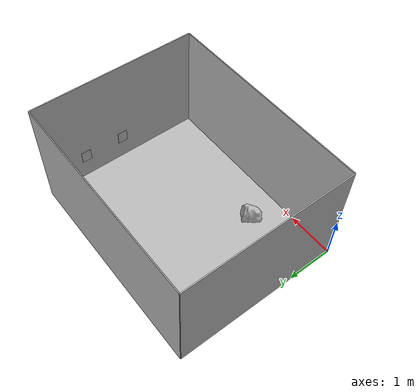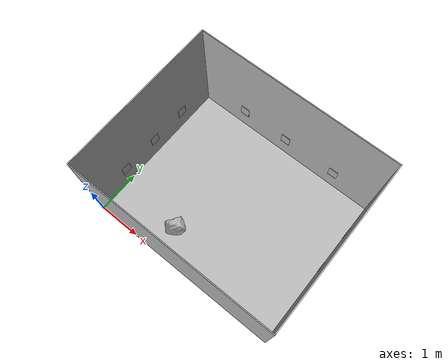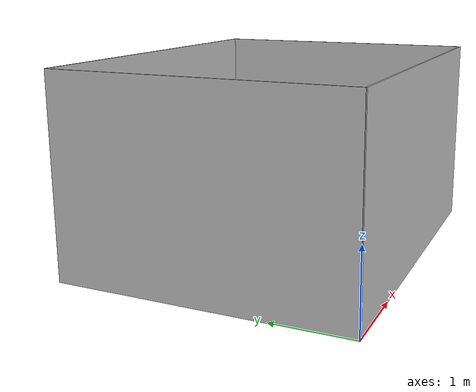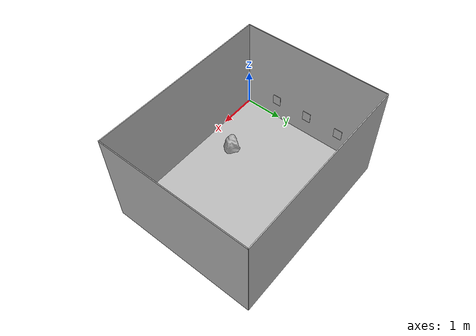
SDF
<sdf version="1.4">
 <world name="MAST demo room">
  <scene><ambient>0.5 0.5 0.5 1</ambient><background>0.5 0.5 0.5 1</background><shadows>false</shadows></scene>
  <physics type="ode">
   <gravity>0 0 -9.81</gravity>
   <ode>
    <solver><type>quick</type><iters>10</iters><sor>1.3</sor></solver>
    <constraints>
     <cfm>0.0</cfm>
     <erp>0.2</erp>
     <contact_max_correcting_vel>10</contact_max_correcting_vel>
     <contact_surface_layer>0.001</contact_surface_layer>
    </constraints>
   </ode>
   <max_step_size>0.001</max_step_size>
  </physics>
  <light name="directional_light_1" type="directional">
   <pose>0 20 20 0.1 0.1 0</pose>
   <diffuse>1 1 1 1</diffuse>
   <specular>1 1 1 1</specular>
   <attenuation><range>300</range></attenuation>
   <direction>0.1 0.1 -1</direction>
   <cast_shadows>false</cast_shadows>
  </light>
  <model name="north_wall">
   <pose>2.29 3.66 0 0 0 0</pose>
   <include><uri>model://MiniMarsWallNorth</uri></include>
  </model>
  <model name="south_wall">
   <pose>2.29 0 0 0 0 0</pose>
   <include><uri>model://MiniMarsWallNorth</uri></include>
  </model>
  <model name="east_wall">
   <pose>4.57 1.83 0 0 0 0</pose>
   <include><uri>model://MiniMarsWallEast</uri></include>
  </model>
  <model name="west_wall">
   <pose>0 1.83 0 0 0 0</pose>
   <include><uri>model://MiniMarsWallEast</uri></include>
  </model>
  <model name="floor"><pose>2.29 1.83 0 0 0 0</pose><include><uri>model://MiniMarsFloor</uri></include></model>
  <model name="at000"><pose>0.02 0.91 0.6 1.57 0 1.57</pose><include><uri>model://at000</uri></include></model>
  <model name="at001"><pose>0.02 1.82 0.6 1.57 0 1.57</pose><include><uri>model://at001</uri></include></model>
  <model name="at002"><pose>0.02 2.73 0.6 1.57 0 1.57</pose><include><uri>model://at002</uri></include></model>
  <model name="at003"><pose>1.14 3.64 0.6 1.57 0 0</pose><include><uri>model://at003</uri></include></model>
  <model name="at004"><pose>2.28 3.64 0.6 1.57 0 0</pose><include><uri>model://at004</uri></include></model>
  <model name="at005"><pose>3.56 3.64 0.6 1.57 0 0</pose><include><uri>model://at005</uri></include></model>
  <model name="at006"><pose>4.55 2.73 0.6 1.57 0 -1.57</pose><include><uri>model://at006</uri></include></model>
  <model name="at007"><pose>4.55 1.82 0.6 1.57 0 -1.57</pose><include><uri>model://at007</uri></include></model>
  <model name="rock_blue"><pose>1.5 0.75 0 0 0 0</pose><include><uri>model://rock_blue</uri></include></model>
 </world>
</sdf>

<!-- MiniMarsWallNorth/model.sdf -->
<sdf version="1.4">
<model name="MiniMarsWallNorth">
  <pose>0 0 1.25 0 0 0</pose>
  <static>true</static>
    <link name="link">
      <collision name="collision">
        <geometry>
          <box>
            <size>4.57 0.02 2.5</size>
          </box>
        </geometry>
      </collision>
      <visual name="visual">
        <geometry>
          <box>
            <size>4.57 0.02 2.5</size>
          </box>
        </geometry>
		       <material>
			<script>
        <uri>model://MiniMarsWallNorth/materials/scripts</uri>
        <uri>model://MiniMarsWallNorth/materials/textures</uri>
        <name>MiniMarsWall/Image</name>
      </script>
        	</material>
      </visual>
    </link>
  </model>
</sdf>

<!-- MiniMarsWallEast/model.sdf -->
<sdf version="1.4">
<model name="MiniMarsWallNorth">
  <pose>0 0 1.25 0 0 0</pose>
  <static>true</static>
    <link name="link">
      <collision name="collision">
        <geometry>
          <box>
            <size>0.02 3.66 2.5</size>
          </box>
        </geometry>
      </collision>
      <visual name="visual">
        <geometry>
          <box>
            <size>0.02 3.66 2.5</size>
          </box>
        </geometry>
		       <material>
			<script>
        <uri>model://MiniMarsWallEast/materials/scripts</uri>
        <uri>model://MiniMarsWallEast/materials/textures</uri>
        <name>MiniMarsWall/Image</name>
      </script>
        	</material>
      </visual>
    </link>
  </model>
</sdf>

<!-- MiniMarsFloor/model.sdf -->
<sdf version="1.4">
<model name="MiniMarsFloor">
  <pose>0 0 0.01 0 0 0</pose>
  <static>true</static>
    <link name="link">
      <collision name="collision">
        <geometry>
          <box>
            <size>4.57 3.66 0.01</size>
          </box>
        </geometry>
      </collision>
      <visual name="visual">
        <geometry>
          <box>
            <size>4.57 3.66 0.01</size>
          </box>
        </geometry>
		       <material>
			<script>
        <uri>model://MiniMarsFloor/materials/scripts</uri>
        <uri>model://MiniMarsFloor/materials/textures</uri>
        <name>MiniMarsFloor/Image</name>
      </script>
        	</material>
      </visual>
    </link>
  </model>
</sdf>

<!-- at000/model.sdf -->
<sdf version="1.4">
<model name="MiniMarsAT000">
  <pose>0 0 0 0 0 0</pose>
  <static>true</static>
    <link name="link">
      <collision name="collision">
        <geometry>
          <box>
            <size>0.22 0.28 0.01</size>
          </box>
        </geometry>
      </collision>
      <visual name="visual">
        <geometry>
          <box>
            <size>0.22 0.28 0.01</size>
          </box>
        </geometry>
		       <material>
			<script>
        <uri>model://at000/materials/scripts</uri>
        <uri>model://at000/materials/textures</uri>
        <name>at000/Image</name>
      </script>
        	</material>
      </visual>
    </link>
  </model>
</sdf>

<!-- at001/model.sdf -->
<sdf version="1.4">
<model name="MiniMarsAT001">
  <pose>0 0 0 0 0 0</pose>
  <static>true</static>
    <link name="link">
      <collision name="collision">
        <geometry>
          <box>
            <size>0.22 0.28 0.01</size>
          </box>
        </geometry>
      </collision>
      <visual name="visual">
        <geometry>
          <box>
            <size>0.22 0.28 0.01</size>
          </box>
        </geometry>
		       <material>
			<script>
        <uri>model://at001/materials/scripts</uri>
        <uri>model://at001/materials/textures</uri>
        <name>at001/Image</name>
      </script>
        	</material>
      </visual>
    </link>
  </model>
</sdf>

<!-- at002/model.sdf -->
<sdf version="1.4">
<model name="MiniMarsAT002">
  <pose>0 0 0 0 0 0</pose>
  <static>true</static>
    <link name="link">
      <collision name="collision">
        <geometry>
          <box>
            <size>0.22 0.28 0.01</size>
          </box>
        </geometry>
      </collision>
      <visual name="visual">
        <geometry>
          <box>
            <size>0.22 0.28 0.01</size>
          </box>
        </geometry>
		       <material>
			<script>
        <uri>model://at002/materials/scripts</uri>
        <uri>model://at002/materials/textures</uri>
        <name>at002/Image</name>
      </script>
        	</material>
      </visual>
    </link>
  </model>
</sdf>

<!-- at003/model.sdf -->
<sdf version="1.4">
<model name="MiniMarsAT003">
  <pose>0 0 0 0 0 0</pose>
  <static>true</static>
    <link name="link">
      <collision name="collision">
        <geometry>
          <box>
            <size>0.22 0.28 0.01</size>
          </box>
        </geometry>
      </collision>
      <visual name="visual">
        <geometry>
          <box>
            <size>0.22 0.28 0.01</size>
          </box>
        </geometry>
		       <material>
			<script>
        <uri>model://at003/materials/scripts</uri>
        <uri>model://at003/materials/textures</uri>
        <name>at003/Image</name>
      </script>
        	</material>
      </visual>
    </link>
  </model>
</sdf>

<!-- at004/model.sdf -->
<sdf version="1.4">
<model name="MiniMarsAT004">
  <pose>0 0 0 0 0 0</pose>
  <static>true</static>
    <link name="link">
      <collision name="collision">
        <geometry>
          <box>
            <size>0.22 0.28 0.01</size>
          </box>
        </geometry>
      </collision>
      <visual name="visual">
        <geometry>
          <box>
            <size>0.22 0.28 0.01</size>
          </box>
        </geometry>
		       <material>
			<script>
        <uri>model://at004/materials/scripts</uri>
        <uri>model://at004/materials/textures</uri>
        <name>at004/Image</name>
      </script>
        	</material>
      </visual>
    </link>
  </model>
</sdf>

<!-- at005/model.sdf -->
<sdf version="1.4">
<model name="MiniMarsAT005">
  <pose>0 0 0 0 0 0</pose>
  <static>true</static>
    <link name="link">
      <collision name="collision">
        <geometry>
          <box>
            <size>0.22 0.28 0.01</size>
          </box>
        </geometry>
      </collision>
      <visual name="visual">
        <geometry>
          <box>
            <size>0.22 0.28 0.01</size>
          </box>
        </geometry>
		       <material>
			<script>
        <uri>model://at005/materials/scripts</uri>
        <uri>model://at005/materials/textures</uri>
        <name>at005/Image</name>
      </script>
        	</material>
      </visual>
    </link>
  </model>
</sdf>

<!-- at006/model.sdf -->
<sdf version="1.4">
<model name="MiniMarsAT006">
  <pose>0 0 0 0 0 0</pose>
  <static>true</static>
    <link name="link">
      <collision name="collision">
        <geometry>
          <box>
            <size>0.22 0.28 0.01</size>
          </box>
        </geometry>
      </collision>
      <visual name="visual">
        <geometry>
          <box>
            <size>0.22 0.28 0.01</size>
          </box>
        </geometry>
		       <material>
			<script>
        <uri>model://at006/materials/scripts</uri>
        <uri>model://at006/materials/textures</uri>
        <name>at006/Image</name>
      </script>
        	</material>
      </visual>
    </link>
  </model>
</sdf>

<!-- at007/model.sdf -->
<sdf version="1.4">
<model name="MiniMarsAT007">
  <pose>0 0 0 0 0 0</pose>
  <static>true</static>
    <link name="link">
      <collision name="collision">
        <geometry>
          <box>
            <size>0.22 0.28 0.01</size>
          </box>
        </geometry>
      </collision>
      <visual name="visual">
        <geometry>
          <box>
            <size>0.22 0.28 0.01</size>
          </box>
        </geometry>
		       <material>
			<script>
        <uri>model://at007/materials/scripts</uri>
        <uri>model://at007/materials/textures</uri>
        <name>at007/Image</name>
      </script>
        	</material>
      </visual>
    </link>
  </model>
</sdf>

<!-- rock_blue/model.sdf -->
<sdf version="1.4">
<model name="rock_blue">
  <pose>0 0 0 0 0 0</pose>
  <static>true</static>
    <link name="link">
      <collision name="collision">
          <geometry>
            <mesh><uri>model://rock_blue/meshes/blue_rock.dae</uri></mesh>
          </geometry>
      </collision>
        <visual name="visual">
          <geometry>
            <mesh><uri>model://rock_blue/meshes/blue_rock.dae</uri></mesh>
          </geometry>
        </visual>
      </link>
  </model>
</sdf>
